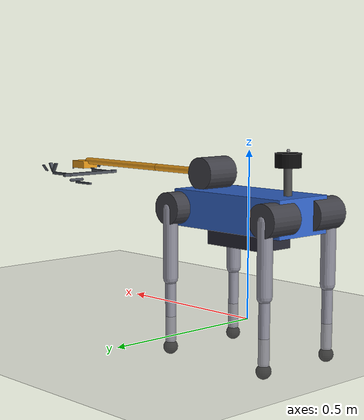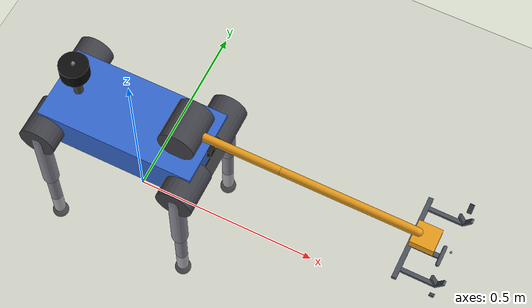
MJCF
<!-- GENERATED by pluggybot.legs.model (issue #377): uv run python -m pluggybot.legs.model -->
<mujoco model="quadruped">
  <compiler angle="radian" autolimits="true"/>
  <option timestep="0.002" integrator="implicitfast"/>
  <visual>
    <global offwidth="1280" offheight="720"/>
    <quality offsamples="0"/>
  </visual>
  <asset>
    <texture name="grid" type="2d" builtin="checker" rgb1="0.82 0.82 0.8"
             rgb2="0.7 0.7 0.68" width="512" height="512"/>
    <material name="grid" texture="grid" texrepeat="8 8" reflectance="0"/>
  </asset>
  <worldbody>
    <light pos="0 0 4" dir="0 0 -1" directional="true"/>
    <geom name="floor" type="plane" size="20 20 0.1" material="grid"/>
  </worldbody>

  <default>
    <default class="quad">
      <joint damping="0" frictionloss="0.1"/>
      <default class="abd"><joint axis="1 0 0"/></default>
      <default class="flex"><joint axis="0 1 0"/></default>
      <default class="visual">
        <geom contype="0" conaffinity="0" group="2" density="0"/>
      </default>
      <default class="limb">
        <geom type="capsule" contype="1" conaffinity="0" group="1"
              rgba="0.55 0.55 0.6 1"/>
      </default>
      <default class="foot">
        <geom type="sphere" size="0.022" condim="3" priority="1"
              friction="0.9 0.02 0.01" contype="1" conaffinity="0" group="1"
              rgba="0.1 0.1 0.1 1"/>
      </default>
    </default>
    <default class="arm">
      <joint type="hinge" axis="0 -1 0" armature="0" frictionloss="0.01"
             damping="0"/>
      <default class="arm_joint"/>
      <default class="arm_link">
        <geom type="capsule" size="0.011" contype="1" conaffinity="0" group="1"
              rgba="0.9 0.6 0.1 1"/>
      </default>
      <default class="fork">
        <geom contype="1" conaffinity="0" group="1" friction="0.4 0.005 0.0001"
              priority="1" mass="0.002" rgba="0.30 0.32 0.36 1"/>
      </default>
    </default>
  </default>

  <worldbody>
    <body name="pluggybot" pos="0 0 0.3244" childclass="quad">
      <freejoint name="pluggybot_root"/>
      <site name="imu" pos="0 0 0" size="0.01"/>
      <geom name="torso" type="box" size="0.21 0.1 0.055" mass="1"
            contype="1" conaffinity="0" group="1" rgba="0.2 0.4 0.8 1"/>
      <!-- The belly pack: the battery, below the torso. It is what the robot
           lies on (and #378's dock contacts are on its underside). -->
      <geom name="belly" type="box" size="0.11 0.06 0.025"
            pos="0 0 -0.08" mass="0.95"
            contype="1" conaffinity="0" group="1" rgba="0.15 0.15 0.2 1"/>
      <geom name="belly_pad_l" type="box" size="0.08 0.01 0.0015"
            pos="0 0.03 -0.1035" mass="0" contype="1" conaffinity="0"
            group="1" rgba="0.85 0.65 0.2 1"/>
      <geom name="belly_pad_r" type="box" size="0.08 0.01 0.0015"
            pos="0 -0.03 -0.1035" mass="0" contype="1" conaffinity="0"
            group="1" rgba="0.85 0.65 0.2 1"/>
      <geom name="electronics" class="visual" type="box" size="0.06 0.05 0.015"
            pos="-0.05 0 0.03" mass="0.4" rgba="0.1 0.5 0.2 1"/>
      <geom name="abd_motors" class="visual" type="box" size="0.19 0.09 0.045"
            mass="1.584" rgba="0.25 0.25 0.28 0.3"/>
      <body name="lidar_mast" pos="-0.15 0 0.055">
        <geom name="lidar_mast" class="visual" type="cylinder" size="0.012 0.04"
              pos="0 0 0.04" mass="0.02" rgba="0.3 0.3 0.3 1"/>
        <geom name="lidar" class="visual" type="cylinder" size="0.0378 0.0205"
              pos="0 0 0.1" mass="0.11" rgba="0.05 0.05 0.05 1"/>
        <!-- 6 mm above the puck, as the rover's: cast from inside the
             housing, every ray hit the housing (#386). -->
        <site name="lidar" pos="0 0 0.1265" size="0.005"/>
      </body>
      <body name="depth_cam_body" pos="0.222 0 0" euler="0 0.5236 0">
        <geom name="depth_cam" class="visual" type="box" size="0.0125 0.045 0.0125"
              mass="0.09" rgba="0.2 0.2 0.2 1"/>
        <camera name="depth_eye" pos="0.013 0 0" xyaxes="0 -1 0 0 0 1" fovy="58"/>
        <!-- ...and the D435's colour imager beside it (#407): 69 x 42 deg,
             what finds a cube's small tags at the robot's feet. -->
        <camera name="color_eye" pos="0.013 -0.015 0" xyaxes="0 -1 0 0 0 1" fovy="42"/>
      </body>
      <body name="nav_cam_body" pos="0.215 0 0.043">
        <geom name="nav_cam" class="visual" type="box" size="0.006 0.012 0.012"
              mass="0.03" rgba="0.1 0.1 0.1 1"/>
        <camera name="nav_eye" pos="0.007 0 0" xyaxes="0 -1 0 0 0 1" fovy="41"/>
      </body>
      <site name="arm_shoulder" pos="0.17 0 0.085" size="0.01"/>
      <geom name="arm_motors" class="visual" type="cylinder" size="0.0485 0.055" pos="0.15 0 0.1" quat="0.707107 0.707107 0 0" mass="0.792" rgba="0.25 0.25 0.28 1"/>

      <body name="FL_hip" pos="0.19 0.05 0">
        <joint name="FL_hip_abd" class="abd" range="-0.8 0.8"
               armature="0.004608"/>
        <geom name="FL_stack" class="visual" type="cylinder" size="0.0485 0.055"
              pos="0 0.04675 0" euler="1.5708 0 0" mass="0.792"
              rgba="0.25 0.25 0.28 1"/>
        <body name="FL_thigh" pos="0 0.085 0">
          <joint name="FL_hip_flex" class="flex" range="-1.6 3.3"
                 armature="0.004608"/>
          <geom name="FL_thigh" class="limb" fromto="0 0 0 0 0 -0.21"
                size="0.022" mass="0.12"/>
          <body name="FL_shank" pos="0 0 -0.21">
            <joint name="FL_knee" class="flex" range="-2.75 -0.35"
                   armature="0.004608"/>
            <geom name="FL_shank" class="limb" fromto="0 0 0 0 0 -0.188"
                  size="0.016" mass="0.07"/>
            <geom name="FL_foot" class="foot" pos="0 0 -0.21"
                  mass="0.02"/>
            <site name="FL_foot" type="sphere" pos="0 0 -0.21"
                  size="0.026" group="4"/>
          </body>
        </body>
      </body>
      <body name="FR_hip" pos="0.19 -0.05 0">
        <joint name="FR_hip_abd" class="abd" range="-0.8 0.8"
               armature="0.004608"/>
        <geom name="FR_stack" class="visual" type="cylinder" size="0.0485 0.055"
              pos="0 -0.04675 0" euler="1.5708 0 0" mass="0.792"
              rgba="0.25 0.25 0.28 1"/>
        <body name="FR_thigh" pos="0 -0.085 0">
          <joint name="FR_hip_flex" class="flex" range="-1.6 3.3"
                 armature="0.004608"/>
          <geom name="FR_thigh" class="limb" fromto="0 0 0 0 0 -0.21"
                size="0.022" mass="0.12"/>
          <body name="FR_shank" pos="0 0 -0.21">
            <joint name="FR_knee" class="flex" range="-2.75 -0.35"
                   armature="0.004608"/>
            <geom name="FR_shank" class="limb" fromto="0 0 0 0 0 -0.188"
                  size="0.016" mass="0.07"/>
            <geom name="FR_foot" class="foot" pos="0 0 -0.21"
                  mass="0.02"/>
            <site name="FR_foot" type="sphere" pos="0 0 -0.21"
                  size="0.026" group="4"/>
          </body>
        </body>
      </body>
      <body name="HL_hip" pos="-0.19 0.05 0">
        <joint name="HL_hip_abd" class="abd" range="-0.8 0.8"
               armature="0.004608"/>
        <geom name="HL_stack" class="visual" type="cylinder" size="0.0485 0.055"
              pos="0 0.04675 0" euler="1.5708 0 0" mass="0.792"
              rgba="0.25 0.25 0.28 1"/>
        <body name="HL_thigh" pos="0 0.085 0">
          <joint name="HL_hip_flex" class="flex" range="-1.6 3.3"
                 armature="0.004608"/>
          <geom name="HL_thigh" class="limb" fromto="0 0 0 0 0 -0.21"
                size="0.022" mass="0.12"/>
          <body name="HL_shank" pos="0 0 -0.21">
            <joint name="HL_knee" class="flex" range="-2.75 -0.35"
                   armature="0.004608"/>
            <geom name="HL_shank" class="limb" fromto="0 0 0 0 0 -0.188"
                  size="0.016" mass="0.07"/>
            <geom name="HL_foot" class="foot" pos="0 0 -0.21"
                  mass="0.02"/>
            <site name="HL_foot" type="sphere" pos="0 0 -0.21"
                  size="0.026" group="4"/>
          </body>
        </body>
      </body>
      <body name="HR_hip" pos="-0.19 -0.05 0">
        <joint name="HR_hip_abd" class="abd" range="-0.8 0.8"
               armature="0.004608"/>
        <geom name="HR_stack" class="visual" type="cylinder" size="0.0485 0.055"
              pos="0 -0.04675 0" euler="1.5708 0 0" mass="0.792"
              rgba="0.25 0.25 0.28 1"/>
        <body name="HR_thigh" pos="0 -0.085 0">
          <joint name="HR_hip_flex" class="flex" range="-1.6 3.3"
                 armature="0.004608"/>
          <geom name="HR_thigh" class="limb" fromto="0 0 0 0 0 -0.21"
                size="0.022" mass="0.12"/>
          <body name="HR_shank" pos="0 0 -0.21">
            <joint name="HR_knee" class="flex" range="-2.75 -0.35"
                   armature="0.004608"/>
            <geom name="HR_shank" class="limb" fromto="0 0 0 0 0 -0.188"
                  size="0.016" mass="0.07"/>
            <geom name="HR_foot" class="foot" pos="0 0 -0.21"
                  mass="0.02"/>
            <site name="HR_foot" type="sphere" pos="0 0 -0.21"
                  size="0.026" group="4"/>
          </body>
        </body>
      </body>
      <body name="arm_upper" pos="0.15 0 0.1" childclass="arm">
        <joint name="arm_shoulder" class="arm_joint" range="-1.2 3.4"
               armature="0.004608" frictionloss="0.1"/>
        <geom name="arm_upper" class="arm_link" fromto="0 0 0 0.25 0 0"
              mass="0.15"/>
        <body name="arm_fore" pos="0.25 0 0">
          <joint name="arm_elbow" class="arm_joint" range="-3.14159 0.4"/>
          <geom name="arm_fore" class="arm_link" fromto="0 0 0 0.35 0 0"
                mass="0.15"/>

          <body name="arm_plate" pos="0.35 0 0">
            <joint name="arm_wrist" class="arm_joint" range="-6.3 6.3"/>
            <geom name="arm_plate" class="arm_link" type="box" size="0.03 0.03 0.012"
                  pos="0.02 0 -0.012" mass="0.058"/>
          <geom name="arm_vl_a" class="fork" type="box" size="0.0156 0.006 0.003" pos="0.0772 -0.085 -0.02249" quat="0.866025 0 0.5 0"/>
          <geom name="arm_vl_b" class="fork" type="box" size="0.0156 0.006 0.003" pos="0.0928 -0.085 -0.02249" quat="0.866025 0 -0.5 0"/>
          <geom name="arm_prong_l" class="fork" type="box" size="0.05 0.005 0.004" pos="0.035 -0.085 -0.042"/>
          <geom name="arm_ramp_l" class="fork" type="box" friction="0.15 0.005 0.0001" priority="2" size="0.006 0.0125 0.0015" pos="0.085 -0.119 -0.0225" quat="0.894427 -0.447214 0 0"/>
          <geom name="arm_vr_a" class="fork" type="box" size="0.0156 0.006 0.003" pos="0.0772 0.085 -0.02249" quat="0.866025 0 0.5 0"/>
          <geom name="arm_vr_b" class="fork" type="box" size="0.0156 0.006 0.003" pos="0.0928 0.085 -0.02249" quat="0.866025 0 -0.5 0"/>
          <geom name="arm_prong_r" class="fork" type="box" size="0.05 0.005 0.004" pos="0.035 0.085 -0.042"/>
          <geom name="arm_ramp_r" class="fork" type="box" friction="0.15 0.005 0.0001" priority="2" size="0.006 0.0125 0.0015" pos="0.085 0.119 -0.0225" quat="0.894427 0.447214 0 0"/>
          <geom name="arm_bridge" class="fork" type="box" size="0.006 0.1115 0.005" pos="-0.009 0 -0.042"/>
          <geom name="arm_pad" class="fork" type="capsule" size="0.005 0.024" pos="0.067 0 -0.07" quat="0.707107 0.707107 0 0"/>
          <geom name="arm_pad_post" class="fork" type="box" size="0.038 0.006 0.003" pos="0.029 0 -0.078"/>
          <site name="arm_seat" pos="0.085 0 -0.03" size="0.003"/>
          </body>
        </body>
      </body>
    </body>
  </worldbody>

  <tendon>
    <fixed name="arm_fore" armature="0.004608" frictionloss="0.1"><joint joint="arm_shoulder" coef="1"/><joint joint="arm_elbow" coef="1"/></fixed>
    <fixed name="arm_level"><joint joint="arm_shoulder" coef="1"/><joint joint="arm_elbow" coef="1"/><joint joint="arm_wrist" coef="1"/></fixed>
  </tendon>
  <equality>
    <tendon name="arm_level" tendon1="arm_level" polycoef="0 0 0 0 0" solref="0.004 1"/>
  </equality>

  <actuator>
    <dcmotor name="FL_hip_abd" joint="FL_hip_abd" input="position" motorconst="1.5286624203821657 0.0" resistance="1.4444054365815742" saturation="22.0 0.0 0.0" controller="17.188965195673614 0.0 -0.43437890937176427 0.0 0.0 43.2"/>
    <dcmotor name="FL_hip_flex" joint="FL_hip_flex" input="position" motorconst="1.5286624203821657 0.0" resistance="1.4444054365815742" saturation="22.0 0.0 0.0" controller="17.188965195673614 0.0 -0.43437890937176427 0.0 0.0 43.2"/>
    <dcmotor name="FL_knee" joint="FL_knee" input="position" motorconst="1.5286624203821657 0.0" resistance="1.4444054365815742" saturation="22.0 0.0 0.0" controller="17.188965195673614 0.0 -0.43437890937176427 0.0 0.0 43.2"/>
    <dcmotor name="FR_hip_abd" joint="FR_hip_abd" input="position" motorconst="1.5286624203821657 0.0" resistance="1.4444054365815742" saturation="22.0 0.0 0.0" controller="17.188965195673614 0.0 -0.43437890937176427 0.0 0.0 43.2"/>
    <dcmotor name="FR_hip_flex" joint="FR_hip_flex" input="position" motorconst="1.5286624203821657 0.0" resistance="1.4444054365815742" saturation="22.0 0.0 0.0" controller="17.188965195673614 0.0 -0.43437890937176427 0.0 0.0 43.2"/>
    <dcmotor name="FR_knee" joint="FR_knee" input="position" motorconst="1.5286624203821657 0.0" resistance="1.4444054365815742" saturation="22.0 0.0 0.0" controller="17.188965195673614 0.0 -0.43437890937176427 0.0 0.0 43.2"/>
    <dcmotor name="HL_hip_abd" joint="HL_hip_abd" input="position" motorconst="1.5286624203821657 0.0" resistance="1.4444054365815742" saturation="22.0 0.0 0.0" controller="17.188965195673614 0.0 -0.43437890937176427 0.0 0.0 43.2"/>
    <dcmotor name="HL_hip_flex" joint="HL_hip_flex" input="position" motorconst="1.5286624203821657 0.0" resistance="1.4444054365815742" saturation="22.0 0.0 0.0" controller="17.188965195673614 0.0 -0.43437890937176427 0.0 0.0 43.2"/>
    <dcmotor name="HL_knee" joint="HL_knee" input="position" motorconst="1.5286624203821657 0.0" resistance="1.4444054365815742" saturation="22.0 0.0 0.0" controller="17.188965195673614 0.0 -0.43437890937176427 0.0 0.0 43.2"/>
    <dcmotor name="HR_hip_abd" joint="HR_hip_abd" input="position" motorconst="1.5286624203821657 0.0" resistance="1.4444054365815742" saturation="22.0 0.0 0.0" controller="17.188965195673614 0.0 -0.43437890937176427 0.0 0.0 43.2"/>
    <dcmotor name="HR_hip_flex" joint="HR_hip_flex" input="position" motorconst="1.5286624203821657 0.0" resistance="1.4444054365815742" saturation="22.0 0.0 0.0" controller="17.188965195673614 0.0 -0.43437890937176427 0.0 0.0 43.2"/>
    <dcmotor name="HR_knee" joint="HR_knee" input="position" motorconst="1.5286624203821657 0.0" resistance="1.4444054365815742" saturation="22.0 0.0 0.0" controller="17.188965195673614 0.0 -0.43437890937176427 0.0 0.0 43.2"/>
    <motor name="arm_shoulder" joint="arm_shoulder" ctrlrange="-22 22"/>
    <motor name="arm_elbow" tendon="arm_fore" ctrlrange="-22 22"/>
  </actuator>

  <sensor>
    <framequat name="torso_quat" objtype="site" objname="imu"/>
    <gyro name="imu_ang_vel" site="imu"/>
    <accelerometer name="imu_lin_acc" site="imu"/>
    <velocimeter name="imu_lin_vel" site="imu"/>
    <subtreeangmom name="root_angmom" body="pluggybot"/>
    <touch name="FL_touch" site="FL_foot"/>
    <touch name="FR_touch" site="FR_foot"/>
    <touch name="HL_touch" site="HL_foot"/>
    <touch name="HR_touch" site="HR_foot"/>
  </sensor>

  <keyframe>
    <key name="stand" qpos="0 0 0.3244 1 0 0 0 0 0.766994 -1.53399 0 0.766994 -1.53399 0 0.766994 -1.53399 0 0.766994 -1.53399 3.14159 -2.96659 -0.175"/>
    <key name="lie" qpos="0 0 0.106 1 0 0 0 0 1.16447 -2.73527 0 1.16447 -2.73527 0 1.16447 -2.73527 0 1.16447 -2.73527 3.14159 -2.96659 -0.175"/>
  </keyframe>
</mujoco>
